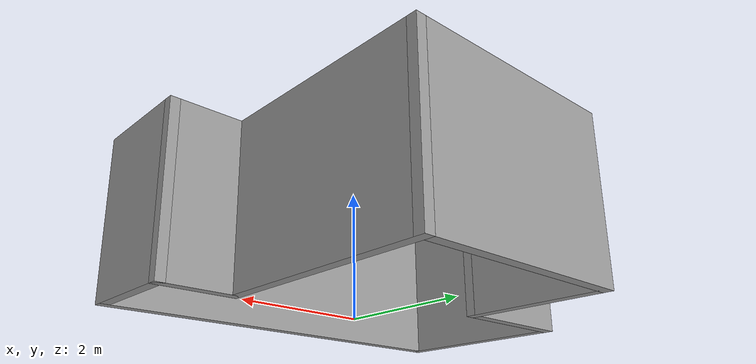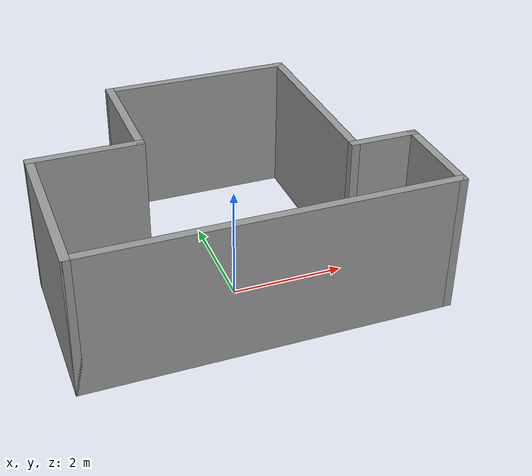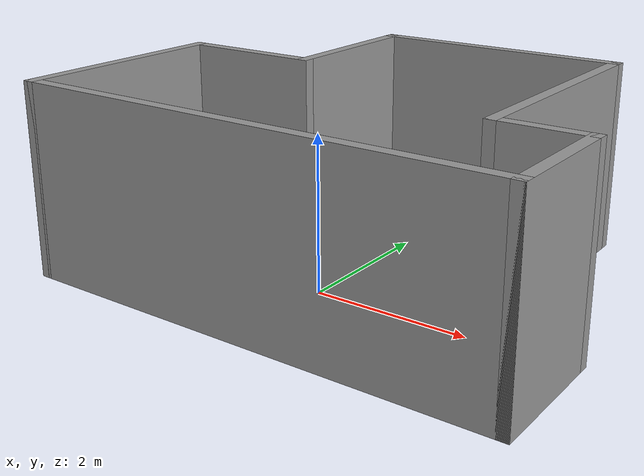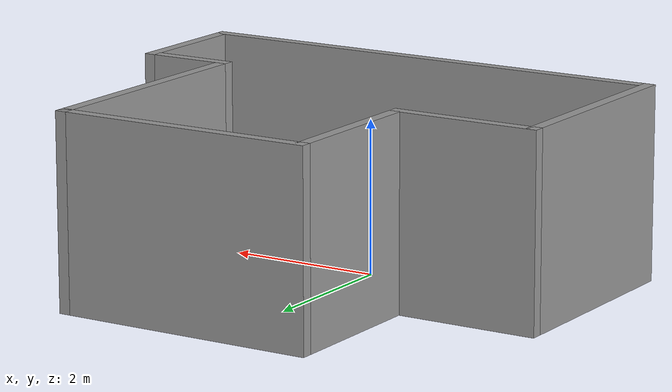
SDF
<?xml version='1.0'?>
<sdf version='1.7'>
  <model name='my_env'>
    <pose>0.11 0.945 0 0 -0 0</pose>
    <link name='Wall_1'>
      <collision name='Wall_1_Collision'>
        <geometry>
          <box>
            <size>1.75 0.15 2.5</size>
          </box>
        </geometry>
        <pose>0 0 1.25 0 -0 0</pose>
      </collision>
      <visual name='Wall_1_Visual'>
        <pose>0 0 1.25 0 -0 0</pose>
        <geometry>
          <box>
            <size>1.75 0.15 2.5</size>
          </box>
        </geometry>
        <material>
          <script>
            <uri>file://media/materials/scripts/gazebo.material</uri>
            <name>Gazebo/Grey</name>
          </script>
          <ambient>1 1 1 1</ambient>
        </material>
        <meta>
          <layer>0</layer>
        </meta>
      </visual>
      <pose>3.15 -1.675 0 0 -0 1.5708</pose>
    </link>
    <link name='Wall_10'>
      <collision name='Wall_10_Collision'>
        <geometry>
          <box>
            <size>3 0.15 2.5</size>
          </box>
        </geometry>
        <pose>0 0 1.25 0 -0 0</pose>
      </collision>
      <visual name='Wall_10_Visual'>
        <pose>0 0 1.25 0 -0 0</pose>
        <geometry>
          <box>
            <size>3 0.15 2.5</size>
          </box>
        </geometry>
        <material>
          <script>
            <uri>file://media/materials/scripts/gazebo.material</uri>
            <name>Gazebo/Grey</name>
          </script>
          <ambient>1 1 1 1</ambient>
        </material>
        <meta>
          <layer>0</layer>
        </meta>
      </visual>
      <pose>-3.15 -1.05 0 0 -0 -1.5708</pose>
    </link>
    <link name='Wall_15'>
      <collision name='Wall_15_Collision'>
        <geometry>
          <box>
            <size>6.45 0.15 2.5</size>
          </box>
        </geometry>
        <pose>0 0 1.25 0 -0 0</pose>
      </collision>
      <visual name='Wall_15_Visual'>
        <pose>0 0 1.25 0 -0 0</pose>
        <geometry>
          <box>
            <size>6.45 0.15 2.5</size>
          </box>
        </geometry>
        <material>
          <script>
            <uri>file://media/materials/scripts/gazebo.material</uri>
            <name>Gazebo/Grey</name>
          </script>
          <ambient>1 1 1 1</ambient>
        </material>
        <meta>
          <layer>0</layer>
        </meta>
      </visual>
      <pose>0 -2.475 0 0 -0 0</pose>
    </link>
    <link name='Wall_2'>
      <collision name='Wall_2_Collision'>
        <geometry>
          <box>
            <size>1.25 0.15 2.5</size>
          </box>
        </geometry>
        <pose>0 0 1.25 0 -0 0</pose>
      </collision>
      <visual name='Wall_2_Visual'>
        <pose>0 0 1.25 0 -0 0</pose>
        <geometry>
          <box>
            <size>1.25 0.15 2.5</size>
          </box>
        </geometry>
        <material>
          <script>
            <uri>file://media/materials/scripts/gazebo.material</uri>
            <name>Gazebo/Grey</name>
          </script>
          <ambient>1 1 1 1</ambient>
        </material>
        <meta>
          <layer>0</layer>
        </meta>
      </visual>
      <pose>2.6 -0.875 0 0 -0 3.14159</pose>
    </link>
    <link name='Wall_6'>
      <collision name='Wall_6_Collision'>
        <geometry>
          <box>
            <size>3.5 0.15 2.5</size>
          </box>
        </geometry>
        <pose>0 0 1.25 0 -0 0</pose>
      </collision>
      <visual name='Wall_6_Visual'>
        <pose>0 0 1.25 0 -0 0</pose>
        <geometry>
          <box>
            <size>3.5 0.15 2.5</size>
          </box>
        </geometry>
        <material>
          <script>
            <uri>file://media/materials/scripts/gazebo.material</uri>
            <name>Gazebo/Grey</name>
          </script>
          <ambient>1 1 1 1</ambient>
        </material>
        <meta>
          <layer>0</layer>
        </meta>
      </visual>
      <pose>2.05 0.8 0 0 -0 1.5708</pose>
    </link>
    <link name='Wall_7'>
      <collision name='Wall_7_Collision'>
        <geometry>
          <box>
            <size>3.5 0.15 2.5</size>
          </box>
        </geometry>
        <pose>0 0 1.25 0 -0 0</pose>
      </collision>
      <visual name='Wall_7_Visual'>
        <pose>0 0 1.25 0 -0 0</pose>
        <geometry>
          <box>
            <size>3.5 0.15 2.5</size>
          </box>
        </geometry>
        <material>
          <script>
            <uri>file://media/materials/scripts/gazebo.material</uri>
            <name>Gazebo/Grey</name>
          </script>
          <ambient>1 1 1 1</ambient>
        </material>
        <meta>
          <layer>0</layer>
        </meta>
      </visual>
      <pose>0.375 2.475 0 0 -0 3.14159</pose>
    </link>
    <link name='Wall_8'>
      <collision name='Wall_8_Collision'>
        <geometry>
          <box>
            <size>2.25 0.15 2.5</size>
          </box>
        </geometry>
        <pose>0 0 1.25 0 -0 0</pose>
      </collision>
      <visual name='Wall_8_Visual'>
        <pose>0 0 1.25 0 -0 0</pose>
        <geometry>
          <box>
            <size>2.25 0.15 2.5</size>
          </box>
        </geometry>
        <material>
          <script>
            <uri>file://media/materials/scripts/gazebo.material</uri>
            <name>Gazebo/Grey</name>
          </script>
          <ambient>1 1 1 1</ambient>
        </material>
        <meta>
          <layer>0</layer>
        </meta>
      </visual>
      <pose>-1.3 1.425 0 0 -0 -1.5708</pose>
    </link>
    <link name='Wall_9'>
      <collision name='Wall_9_Collision'>
        <geometry>
          <box>
            <size>2 0.15 2.5</size>
          </box>
        </geometry>
        <pose>0 0 1.25 0 -0 0</pose>
      </collision>
      <visual name='Wall_9_Visual'>
        <pose>0 0 1.25 0 -0 0</pose>
        <geometry>
          <box>
            <size>2 0.15 2.5</size>
          </box>
        </geometry>
        <material>
          <script>
            <uri>file://media/materials/scripts/gazebo.material</uri>
            <name>Gazebo/Grey</name>
          </script>
          <ambient>1 1 1 1</ambient>
        </material>
        <meta>
          <layer>0</layer>
        </meta>
      </visual>
      <pose>-2.225 0.375 0 0 -0 3.14159</pose>
    </link>
    <static>1</static>
  </model>
</sdf>
